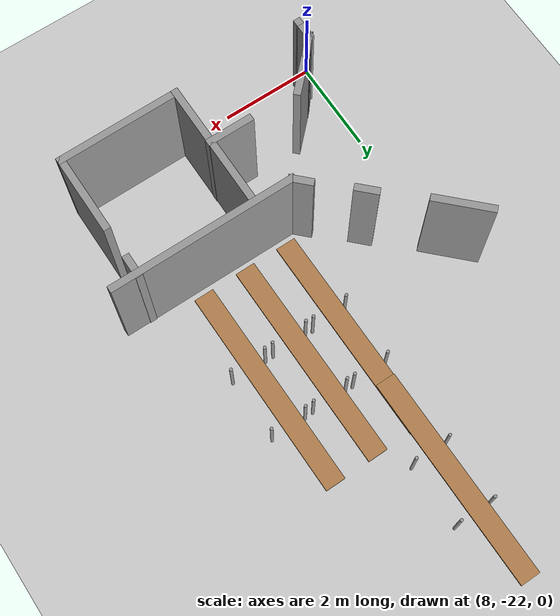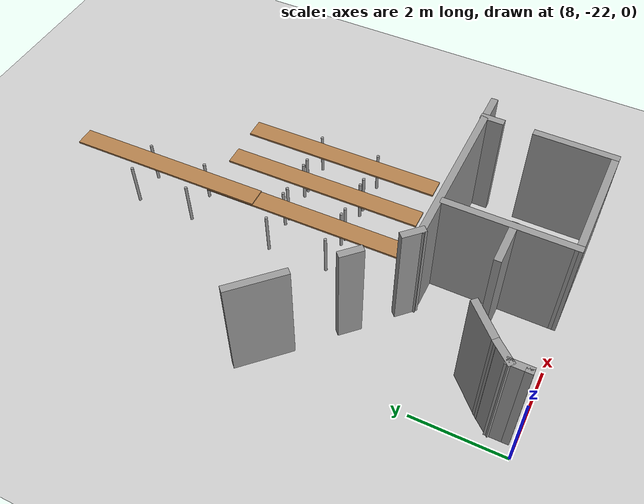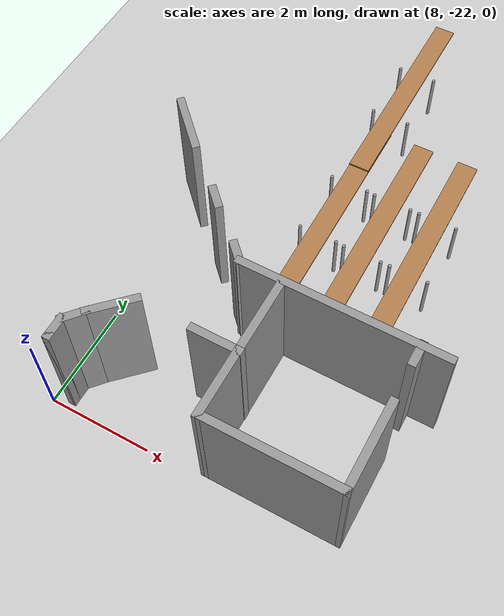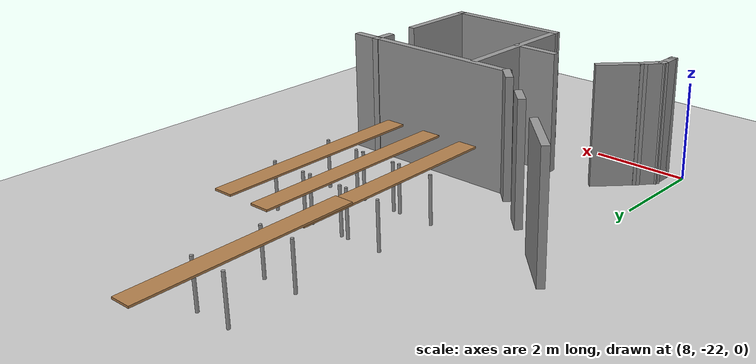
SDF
<sdf version="1.6">
 <world name="default">
  <model name="ground_plane">
   <static>1</static>
   <link name="link">
    <collision name="collision">
     <geometry><plane><normal>0 0 1</normal><size>100 100</size></plane></geometry>
     <surface><friction><ode><mu>100</mu><mu2>50</mu2></ode></friction></surface>
    </collision>
    <visual name="visual">
     <cast_shadows>0</cast_shadows>
     <geometry><plane><normal>0 0 1</normal><size>100 100</size></plane></geometry>
     <material>
      <script><uri>file://media/materials/scripts/gazebo.material</uri><name>Gazebo/Grey</name></script>
     </material>
    </visual>
   </link>
  </model>
  <model name="Parte_DX_(visione_alta_mappa)_CV1">
   <pose>7.84951 -6.02799 0 0 -0 0</pose>
   <link name="Wall_138">
    <collision name="Wall_138_Collision">
     <geometry><box><size>0.5 0.15 2.5</size></box></geometry>
     <pose>0 0 1.25 0 -0 0</pose>
    </collision>
    <visual name="Wall_138_Visual">
     <pose>0 0 1.25 0 -0 0</pose>
     <geometry><box><size>0.5 0.15 2.5</size></box></geometry>
     <material>
      <script><uri>file://media/materials/scripts/gazebo.material</uri><name>Gazebo/Grey</name></script>
      <ambient>1 1 1 1</ambient>
     </material>
    </visual>
    <pose>5.78705 -13.262 0 0 0 -1.5708</pose>
   </link>
   <link name="Wall_140">
    <collision name="Wall_140_Collision">
     <geometry><box><size>1.75 0.15 2.5</size></box></geometry>
     <pose>0 0 1.25 0 -0 0</pose>
    </collision>
    <visual name="Wall_140_Visual">
     <pose>0 0 1.25 0 -0 0</pose>
     <geometry><box><size>1.75 0.15 2.5</size></box></geometry>
     <material>
      <script><uri>file://media/materials/scripts/gazebo.material</uri><name>Gazebo/Grey</name></script>
      <ambient>1 1 1 1</ambient>
     </material>
    </visual>
    <pose>5.79565 -14.9955 0 0 0 -1.5708</pose>
   </link>
   <link name="Wall_142">
    <collision name="Wall_142_Collision">
     <geometry><box><size>2.75 0.15 2.5</size></box></geometry>
     <pose>0 0 1.25 0 -0 0</pose>
    </collision>
    <visual name="Wall_142_Visual">
     <pose>0 0 1.25 0 -0 0</pose>
     <geometry><box><size>2.75 0.15 2.5</size></box></geometry>
     <material>
      <script><uri>file://media/materials/scripts/gazebo.material</uri><name>Gazebo/Grey</name></script>
      <ambient>1 1 1 1</ambient>
     </material>
    </visual>
    <pose>3.27651 -14.5074 0 0 0 -1.5708</pose>
   </link>
   <link name="Wall_143">
    <collision name="Wall_143_Collision">
     <geometry><box><size>2.66916 0.15 2.5</size></box></geometry>
     <pose>0 0 1.25 0 -0 0</pose>
    </collision>
    <visual name="Wall_143_Visual">
     <pose>0 0 1.25 0 -0 0</pose>
     <geometry><box><size>2.66916 0.15 2.5</size></box></geometry>
     <material>
      <script><uri>file://media/materials/scripts/gazebo.material</uri><name>Gazebo/Grey</name></script>
      <ambient>1 1 1 1</ambient>
     </material>
    </visual>
    <pose>4.53608 -15.8014 0 0 -0 0.004735</pose>
   </link>
   <link name="Wall_145">
    <collision name="Wall_145_Collision">
     <geometry><box><size>1 0.15 2.5</size></box></geometry>
     <pose>0 0 1.25 0 -0 0</pose>
    </collision>
    <visual name="Wall_145_Visual">
     <pose>0 0 1.25 0 -0 0</pose>
     <geometry><box><size>1 0.15 2.5</size></box></geometry>
     <material>
      <script><uri>file://media/materials/scripts/gazebo.material</uri><name>Gazebo/Grey</name></script>
      <ambient>1 1 1 1</ambient>
     </material>
    </visual>
    <pose>2.86011 -14.5744 0 0 -0 3.14159</pose>
   </link>
   <link name="Wall_147">
    <collision name="Wall_147_Collision">
     <geometry><box><size>1 0.15 2.5</size></box></geometry>
     <pose>0 0 1.25 0 -0 0</pose>
    </collision>
    <visual name="Wall_147_Visual">
     <pose>0 0 1.25 0 -0 0</pose>
     <geometry><box><size>1 0.15 2.5</size></box></geometry>
     <material>
      <script><uri>file://media/materials/scripts/gazebo.material</uri><name>Gazebo/Grey</name></script>
      <ambient>1 1 1 1</ambient>
     </material>
    </visual>
    <pose>1.0501 -14.8406 0 0 0 -2.35619</pose>
   </link>
   <link name="Wall_151">
    <collision name="Wall_151_Collision">
     <geometry><box><size>0.15 0.15 2.5</size></box></geometry>
     <pose>0 0 1.25 0 -0 0</pose>
    </collision>
    <visual name="Wall_151_Visual">
     <pose>0 0 1.25 0 -0 0</pose>
     <geometry><box><size>0.15 0.15 2.5</size></box></geometry>
     <material>
      <script><uri>file://media/materials/scripts/gazebo.material</uri><name>Gazebo/Grey</name></script>
      <ambient>1 1 1 1</ambient>
     </material>
    </visual>
    <pose>0.485072 -15.7953 0 0 -0 0</pose>
   </link>
   <link name="Wall_154">
    <collision name="Wall_154_Collision">
     <geometry><box><size>0.5 0.15 2.5</size></box></geometry>
     <pose>0 0 1.25 0 -0 0</pose>
    </collision>
    <visual name="Wall_154_Visual">
     <pose>0 0 1.25 0 -0 0</pose>
     <geometry><box><size>0.5 0.15 2.5</size></box></geometry>
     <material>
      <script><uri>file://media/materials/scripts/gazebo.material</uri><name>Gazebo/Grey</name></script>
      <ambient>1 1 1 1</ambient>
     </material>
    </visual>
    <pose>0.485072 -15.6203 0 0 -0 1.5708</pose>
   </link>
   <link name="Wall_155">
    <collision name="Wall_155_Collision">
     <geometry><box><size>0.553138 0.15 2.5</size></box></geometry>
     <pose>0 0 1.25 0 -0 0</pose>
    </collision>
    <visual name="Wall_155_Visual">
     <pose>0 0 1.25 0 -0 0</pose>
     <geometry><box><size>0.553138 0.15 2.5</size></box></geometry>
     <material>
      <script><uri>file://media/materials/scripts/gazebo.material</uri><name>Gazebo/Grey</name></script>
      <ambient>1 1 1 1</ambient>
     </material>
    </visual>
    <pose>0.617326 -15.2932 0 0 -0 0.85512</pose>
   </link>
   <link name="Wall_196">
    <collision name="Wall_196_Collision">
     <geometry><box><size>1.25 0.15 2.5</size></box></geometry>
     <pose>0 0 1.25 0 -0 0</pose>
    </collision>
    <visual name="Wall_196_Visual">
     <pose>0 0 1.25 0 -0 0</pose>
     <geometry><box><size>1.25 0.15 2.5</size></box></geometry>
     <material>
      <script><uri>file://media/materials/scripts/gazebo.material</uri><name>Gazebo/Grey</name></script>
      <ambient>1 1 1 1</ambient>
     </material>
    </visual>
    <pose>0.112061 -10.9318 0 0 0 -0.785398</pose>
   </link>
   <link name="Wall_198">
    <collision name="Wall_198_Collision">
     <geometry><box><size>0.5 0.15 2.5</size></box></geometry>
     <pose>0 0 1.25 0 -0 0</pose>
    </collision>
    <visual name="Wall_198_Visual">
     <pose>0 0 1.25 0 -0 0</pose>
     <geometry><box><size>0.5 0.15 2.5</size></box></geometry>
     <material>
      <script><uri>file://media/materials/scripts/gazebo.material</uri><name>Gazebo/Grey</name></script>
      <ambient>1 1 1 1</ambient>
     </material>
    </visual>
    <pose>1.42128 -12.1501 0 0 0 -0.785398</pose>
   </link>
   <link name="Wall_71">
    <collision name="Wall_71_Collision">
     <geometry><box><size>4 0.15 2.5</size></box></geometry>
     <pose>0 0 1.25 0 -0 0</pose>
    </collision>
    <visual name="Wall_71_Visual">
     <pose>0 0 1.25 0 -0 0</pose>
     <geometry><box><size>4 0.15 2.5</size></box></geometry>
     <material>
      <script><uri>file://media/materials/scripts/gazebo.material</uri><name>Gazebo/Grey</name></script>
      <ambient>1 1 1 1</ambient>
     </material>
    </visual>
    <pose>4.37477 -13.1006 0 0 -0 0</pose>
   </link>
   <link name="Wall_75">
    <collision name="Wall_75_Collision">
     <geometry><box><size>0.5 0.15 2.5</size></box></geometry>
     <pose>0 0 1.25 0 -0 0</pose>
    </collision>
    <visual name="Wall_75_Visual">
     <pose>0 0 1.25 0 -0 0</pose>
     <geometry><box><size>0.5 0.15 2.5</size></box></geometry>
     <material>
      <script><uri>file://media/materials/scripts/gazebo.material</uri><name>Gazebo/Grey</name></script>
      <ambient>1 1 1 1</ambient>
     </material>
    </visual>
    <pose>2.32603 -12.9769 0 0 -0 2.35619</pose>
   </link>
   <static>1</static>
  </model>
  <model name="tablesclass_clone_29">
   <link name="link">
    <inertial>
     <inertia><ixx>0</ixx><ixy>0</ixy><ixz>0</ixz><iyy>0</iyy><iyz>0</iyz><izz>0</izz></inertia>
     <mass>1.73923</mass>
    </inertial>
    <visual name="front_right_leg">
     <pose>0.68 -0.38 0.5 0 -0 0</pose>
     <geometry><cylinder><radius>0.0324505</radius><length>1</length></cylinder></geometry>
     <material>
      <script><uri>file://media/materials/scripts/gazebo.material</uri><name>Gazebo/Grey</name></script>
      <ambient>0.3 0.3 0.3 1</ambient>
      <diffuse>0.7 0.7 0.7 1</diffuse>
      <specular>0.01 0.01 0.01 1</specular>
      <emissive>0 0 0 1</emissive>
     </material>
    </visual>
    <visual name="back_left_leg">
     <pose>-0.68 0.38 0.5 0 -0 0</pose>
     <geometry><cylinder><radius>0.0324505</radius><length>1</length></cylinder></geometry>
     <material>
      <script><uri>file://media/materials/scripts/gazebo.material</uri><name>Gazebo/Grey</name></script>
      <ambient>0.3 0.3 0.3 1</ambient>
      <diffuse>0.7 0.7 0.7 1</diffuse>
      <specular>0.01 0.01 0.01 1</specular>
      <emissive>0 0 0 1</emissive>
     </material>
    </visual>
    <visual name="front_left_leg">
     <pose>0.68 0.38 0.5 0 -0 0</pose>
     <geometry><cylinder><radius>0.0324505</radius><length>1</length></cylinder></geometry>
     <material>
      <script><uri>file://media/materials/scripts/gazebo.material</uri><name>Gazebo/Grey</name></script>
      <ambient>0.3 0.3 0.3 1</ambient>
      <diffuse>0.7 0.7 0.7 1</diffuse>
      <specular>0.01 0.01 0.01 1</specular>
      <emissive>0 0 0 1</emissive>
     </material>
    </visual>
    <visual name="visual1">
     <pose>0 0 1 0 -0 0</pose>
     <geometry><box><size>4.38513 0.412326 0.04</size></box></geometry>
     <material>
      <script><uri>file://media/materials/scripts/gazebo.material</uri><name>Gazebo/Wood</name></script>
      <ambient>1 1 1 1</ambient>
      <diffuse>1 1 1 1</diffuse>
      <specular>0.2 0.2 0.2 1</specular>
      <emissive>0 0 0 1</emissive>
     </material>
    </visual>
    <visual name="back_right_leg">
     <pose>-0.68 -0.38 0.5 0 -0 0</pose>
     <geometry><cylinder><radius>0.0324505</radius><length>1</length></cylinder></geometry>
     <material>
      <script><uri>file://media/materials/scripts/gazebo.material</uri><name>Gazebo/Grey</name></script>
      <ambient>0.3 0.3 0.3 1</ambient>
      <diffuse>0.7 0.7 0.7 1</diffuse>
      <specular>0.01 0.01 0.01 1</specular>
      <emissive>0 0 0 1</emissive>
     </material>
    </visual>
    <collision name="front_left_leg">
     <pose>0.68 0.38 0.5 0 -0 0</pose>
     <geometry><cylinder><radius>0.03245</radius><length>1</length></cylinder></geometry>
     <surface>
      <friction>
       <ode><mu>1</mu><mu2>1</mu2><fdir1>0 0 0</fdir1><slip1>0</slip1><slip2>0</slip2></ode>
       <torsional>
        <coefficient>1</coefficient>
        <patch_radius>0</patch_radius>
        <surface_radius>0</surface_radius>
        <use_patch_radius>1</use_patch_radius>
        <ode><slip>0</slip></ode>
       </torsional>
      </friction>
      <bounce><restitution_coefficient>0</restitution_coefficient><threshold>1e+06</threshold></bounce>
      <contact>
       <collide_without_contact>0</collide_without_contact>
       <collide_without_contact_bitmask>1</collide_without_contact_bitmask>
       <collide_bitmask>1</collide_bitmask>
       <ode>
        <soft_cfm>0</soft_cfm>
        <soft_erp>0.2</soft_erp>
        <kp>1e+13</kp>
        <kd>1</kd>
        <max_vel>0.01</max_vel>
        <min_depth>0</min_depth>
       </ode>
       <bullet>
        <split_impulse>1</split_impulse>
        <split_impulse_penetration_threshold>-0.01</split_impulse_penetration_threshold>
        <soft_cfm>0</soft_cfm>
        <soft_erp>0.2</soft_erp>
        <kp>1e+13</kp>
        <kd>1</kd>
       </bullet>
      </contact>
     </surface>
    </collision>
    <collision name="front_right_leg">
     <pose>0.68 -0.38 0.5 0 -0 0</pose>
     <geometry><cylinder><radius>0.03245</radius><length>1</length></cylinder></geometry>
     <surface>
      <friction>
       <ode><mu>1</mu><mu2>1</mu2><fdir1>0 0 0</fdir1><slip1>0</slip1><slip2>0</slip2></ode>
       <torsional>
        <coefficient>1</coefficient>
        <patch_radius>0</patch_radius>
        <surface_radius>0</surface_radius>
        <use_patch_radius>1</use_patch_radius>
        <ode><slip>0</slip></ode>
       </torsional>
      </friction>
      <bounce><restitution_coefficient>0</restitution_coefficient><threshold>1e+06</threshold></bounce>
      <contact>
       <collide_without_contact>0</collide_without_contact>
       <collide_without_contact_bitmask>1</collide_without_contact_bitmask>
       <collide_bitmask>1</collide_bitmask>
       <ode>
        <soft_cfm>0</soft_cfm>
        <soft_erp>0.2</soft_erp>
        <kp>1e+13</kp>
        <kd>1</kd>
        <max_vel>0.01</max_vel>
        <min_depth>0</min_depth>
       </ode>
       <bullet>
        <split_impulse>1</split_impulse>
        <split_impulse_penetration_threshold>-0.01</split_impulse_penetration_threshold>
        <soft_cfm>0</soft_cfm>
        <soft_erp>0.2</soft_erp>
        <kp>1e+13</kp>
        <kd>1</kd>
       </bullet>
      </contact>
     </surface>
    </collision>
    <collision name="back_left_leg">
     <pose>-0.68 0.38 0.5 0 -0 0</pose>
     <geometry><cylinder><radius>0.03245</radius><length>1</length></cylinder></geometry>
     <surface>
      <friction>
       <ode><mu>1</mu><mu2>1</mu2><fdir1>0 0 0</fdir1><slip1>0</slip1><slip2>0</slip2></ode>
       <torsional>
        <coefficient>1</coefficient>
        <patch_radius>0</patch_radius>
        <surface_radius>0</surface_radius>
        <use_patch_radius>1</use_patch_radius>
        <ode><slip>0</slip></ode>
       </torsional>
      </friction>
      <bounce><restitution_coefficient>0</restitution_coefficient><threshold>1e+06</threshold></bounce>
      <contact>
       <collide_without_contact>0</collide_without_contact>
       <collide_without_contact_bitmask>1</collide_without_contact_bitmask>
       <collide_bitmask>1</collide_bitmask>
       <ode>
        <soft_cfm>0</soft_cfm>
        <soft_erp>0.2</soft_erp>
        <kp>1e+13</kp>
        <kd>1</kd>
        <max_vel>0.01</max_vel>
        <min_depth>0</min_depth>
       </ode>
       <bullet>
        <split_impulse>1</split_impulse>
        <split_impulse_penetration_threshold>-0.01</split_impulse_penetration_threshold>
        <soft_cfm>0</soft_cfm>
        <soft_erp>0.2</soft_erp>
        <kp>1e+13</kp>
        <kd>1</kd>
       </bullet>
      </contact>
     </surface>
    </collision>
    <collision name="back_right_leg">
     <pose>-0.68 -0.38 0.5 0 -0 0</pose>
     <geometry><cylinder><radius>0.03245</radius><length>1</length></cylinder></geometry>
     <surface>
      <friction>
       <ode><mu>1</mu><mu2>1</mu2><fdir1>0 0 0</fdir1><slip1>0</slip1><slip2>0</slip2></ode>
       <torsional>
        <coefficient>1</coefficient>
        <patch_radius>0</patch_radius>
        <surface_radius>0</surface_radius>
        <use_patch_radius>1</use_patch_radius>
        <ode><slip>0</slip></ode>
       </torsional>
      </friction>
      <bounce><restitution_coefficient>0</restitution_coefficient><threshold>1e+06</threshold></bounce>
      <contact>
       <collide_without_contact>0</collide_without_contact>
       <collide_without_contact_bitmask>1</collide_without_contact_bitmask>
       <collide_bitmask>1</collide_bitmask>
       <ode>
        <soft_cfm>0</soft_cfm>
        <soft_erp>0.2</soft_erp>
        <kp>1e+13</kp>
        <kd>1</kd>
        <max_vel>0.01</max_vel>
        <min_depth>0</min_depth>
       </ode>
       <bullet>
        <split_impulse>1</split_impulse>
        <split_impulse_penetration_threshold>-0.01</split_impulse_penetration_threshold>
        <soft_cfm>0</soft_cfm>
        <soft_erp>0.2</soft_erp>
        <kp>1e+13</kp>
        <kd>1</kd>
       </bullet>
      </contact>
     </surface>
    </collision>
    <collision name="surface">
     <pose>0 0 1 0 -0 0</pose>
     <geometry><box><size>4.69836 0.412326 0.03</size></box></geometry>
     <surface>
      <friction>
       <ode><mu>0.6</mu><mu2>0.6</mu2><fdir1>0 0 0</fdir1><slip1>0</slip1><slip2>0</slip2></ode>
       <torsional>
        <coefficient>1</coefficient>
        <patch_radius>0</patch_radius>
        <surface_radius>0</surface_radius>
        <use_patch_radius>1</use_patch_radius>
        <ode><slip>0</slip></ode>
       </torsional>
      </friction>
      <bounce><restitution_coefficient>0</restitution_coefficient><threshold>1e+06</threshold></bounce>
      <contact>
       <collide_without_contact>0</collide_without_contact>
       <collide_without_contact_bitmask>1</collide_without_contact_bitmask>
       <collide_bitmask>1</collide_bitmask>
       <ode>
        <soft_cfm>0</soft_cfm>
        <soft_erp>0.2</soft_erp>
        <kp>1e+13</kp>
        <kd>1</kd>
        <max_vel>0.01</max_vel>
        <min_depth>0</min_depth>
       </ode>
       <bullet>
        <split_impulse>1</split_impulse>
        <split_impulse_penetration_threshold>-0.01</split_impulse_penetration_threshold>
        <soft_cfm>0</soft_cfm>
        <soft_erp>0.2</soft_erp>
        <kp>1e+13</kp>
        <kd>1</kd>
       </bullet>
      </contact>
     </surface>
    </collision>
   </link>
   <static>0</static>
   <pose>10.7869 -16.4221 0.00593 4e-06 -0.008326 -1.56362</pose>
  </model>
  <model name="tablesclass_clone_30">
   <link name="link">
    <inertial>
     <inertia><ixx>0</ixx><ixy>0</ixy><ixz>0</ixz><iyy>0</iyy><iyz>0</iyz><izz>0</izz></inertia>
     <mass>1.73923</mass>
    </inertial>
    <visual name="front_right_leg">
     <pose>0.68 -0.38 0.5 0 -0 0</pose>
     <geometry><cylinder><radius>0.0324505</radius><length>1</length></cylinder></geometry>
     <material>
      <script><uri>file://media/materials/scripts/gazebo.material</uri><name>Gazebo/Grey</name></script>
      <ambient>0.3 0.3 0.3 1</ambient>
      <diffuse>0.7 0.7 0.7 1</diffuse>
      <specular>0.01 0.01 0.01 1</specular>
      <emissive>0 0 0 1</emissive>
     </material>
    </visual>
    <visual name="back_left_leg">
     <pose>-0.68 0.38 0.5 0 -0 0</pose>
     <geometry><cylinder><radius>0.0324505</radius><length>1</length></cylinder></geometry>
     <material>
      <script><uri>file://media/materials/scripts/gazebo.material</uri><name>Gazebo/Grey</name></script>
      <ambient>0.3 0.3 0.3 1</ambient>
      <diffuse>0.7 0.7 0.7 1</diffuse>
      <specular>0.01 0.01 0.01 1</specular>
      <emissive>0 0 0 1</emissive>
     </material>
    </visual>
    <visual name="front_left_leg">
     <pose>0.68 0.38 0.5 0 -0 0</pose>
     <geometry><cylinder><radius>0.0324505</radius><length>1</length></cylinder></geometry>
     <material>
      <script><uri>file://media/materials/scripts/gazebo.material</uri><name>Gazebo/Grey</name></script>
      <ambient>0.3 0.3 0.3 1</ambient>
      <diffuse>0.7 0.7 0.7 1</diffuse>
      <specular>0.01 0.01 0.01 1</specular>
      <emissive>0 0 0 1</emissive>
     </material>
    </visual>
    <visual name="visual1">
     <pose>0 0 1 0 -0 0</pose>
     <geometry><box><size>4.38513 0.412326 0.04</size></box></geometry>
     <material>
      <script><uri>file://media/materials/scripts/gazebo.material</uri><name>Gazebo/Wood</name></script>
      <ambient>1 1 1 1</ambient>
      <diffuse>1 1 1 1</diffuse>
      <specular>0.2 0.2 0.2 1</specular>
      <emissive>0 0 0 1</emissive>
     </material>
    </visual>
    <visual name="back_right_leg">
     <pose>-0.68 -0.38 0.5 0 -0 0</pose>
     <geometry><cylinder><radius>0.0324505</radius><length>1</length></cylinder></geometry>
     <material>
      <script><uri>file://media/materials/scripts/gazebo.material</uri><name>Gazebo/Grey</name></script>
      <ambient>0.3 0.3 0.3 1</ambient>
      <diffuse>0.7 0.7 0.7 1</diffuse>
      <specular>0.01 0.01 0.01 1</specular>
      <emissive>0 0 0 1</emissive>
     </material>
    </visual>
    <collision name="front_left_leg">
     <pose>0.68 0.38 0.5 0 -0 0</pose>
     <geometry><cylinder><radius>0.03245</radius><length>1</length></cylinder></geometry>
     <surface>
      <friction>
       <ode><mu>1</mu><mu2>1</mu2><fdir1>0 0 0</fdir1><slip1>0</slip1><slip2>0</slip2></ode>
       <torsional>
        <coefficient>1</coefficient>
        <patch_radius>0</patch_radius>
        <surface_radius>0</surface_radius>
        <use_patch_radius>1</use_patch_radius>
        <ode><slip>0</slip></ode>
       </torsional>
      </friction>
      <bounce><restitution_coefficient>0</restitution_coefficient><threshold>1e+06</threshold></bounce>
      <contact>
       <collide_without_contact>0</collide_without_contact>
       <collide_without_contact_bitmask>1</collide_without_contact_bitmask>
       <collide_bitmask>1</collide_bitmask>
       <ode>
        <soft_cfm>0</soft_cfm>
        <soft_erp>0.2</soft_erp>
        <kp>1e+13</kp>
        <kd>1</kd>
        <max_vel>0.01</max_vel>
        <min_depth>0</min_depth>
       </ode>
       <bullet>
        <split_impulse>1</split_impulse>
        <split_impulse_penetration_threshold>-0.01</split_impulse_penetration_threshold>
        <soft_cfm>0</soft_cfm>
        <soft_erp>0.2</soft_erp>
        <kp>1e+13</kp>
        <kd>1</kd>
       </bullet>
      </contact>
     </surface>
    </collision>
    <collision name="front_right_leg">
     <pose>0.68 -0.38 0.5 0 -0 0</pose>
     <geometry><cylinder><radius>0.03245</radius><length>1</length></cylinder></geometry>
     <surface>
      <friction>
       <ode><mu>1</mu><mu2>1</mu2><fdir1>0 0 0</fdir1><slip1>0</slip1><slip2>0</slip2></ode>
       <torsional>
        <coefficient>1</coefficient>
        <patch_radius>0</patch_radius>
        <surface_radius>0</surface_radius>
        <use_patch_radius>1</use_patch_radius>
        <ode><slip>0</slip></ode>
       </torsional>
      </friction>
      <bounce><restitution_coefficient>0</restitution_coefficient><threshold>1e+06</threshold></bounce>
      <contact>
       <collide_without_contact>0</collide_without_contact>
       <collide_without_contact_bitmask>1</collide_without_contact_bitmask>
       <collide_bitmask>1</collide_bitmask>
       <ode>
        <soft_cfm>0</soft_cfm>
        <soft_erp>0.2</soft_erp>
        <kp>1e+13</kp>
        <kd>1</kd>
        <max_vel>0.01</max_vel>
        <min_depth>0</min_depth>
       </ode>
       <bullet>
        <split_impulse>1</split_impulse>
        <split_impulse_penetration_threshold>-0.01</split_impulse_penetration_threshold>
        <soft_cfm>0</soft_cfm>
        <soft_erp>0.2</soft_erp>
        <kp>1e+13</kp>
        <kd>1</kd>
       </bullet>
      </contact>
     </surface>
    </collision>
    <collision name="back_left_leg">
     <pose>-0.68 0.38 0.5 0 -0 0</pose>
     <geometry><cylinder><radius>0.03245</radius><length>1</length></cylinder></geometry>
     <surface>
      <friction>
       <ode><mu>1</mu><mu2>1</mu2><fdir1>0 0 0</fdir1><slip1>0</slip1><slip2>0</slip2></ode>
       <torsional>
        <coefficient>1</coefficient>
        <patch_radius>0</patch_radius>
        <surface_radius>0</surface_radius>
        <use_patch_radius>1</use_patch_radius>
        <ode><slip>0</slip></ode>
       </torsional>
      </friction>
      <bounce><restitution_coefficient>0</restitution_coefficient><threshold>1e+06</threshold></bounce>
      <contact>
       <collide_without_contact>0</collide_without_contact>
       <collide_without_contact_bitmask>1</collide_without_contact_bitmask>
       <collide_bitmask>1</collide_bitmask>
       <ode>
        <soft_cfm>0</soft_cfm>
        <soft_erp>0.2</soft_erp>
        <kp>1e+13</kp>
        <kd>1</kd>
        <max_vel>0.01</max_vel>
        <min_depth>0</min_depth>
       </ode>
       <bullet>
        <split_impulse>1</split_impulse>
        <split_impulse_penetration_threshold>-0.01</split_impulse_penetration_threshold>
        <soft_cfm>0</soft_cfm>
        <soft_erp>0.2</soft_erp>
        <kp>1e+13</kp>
        <kd>1</kd>
       </bullet>
      </contact>
     </surface>
    </collision>
    <collision name="back_right_leg">
     <pose>-0.68 -0.38 0.5 0 -0 0</pose>
     <geometry><cylinder><radius>0.03245</radius><length>1</length></cylinder></geometry>
     <surface>
      <friction>
       <ode><mu>1</mu><mu2>1</mu2><fdir1>0 0 0</fdir1><slip1>0</slip1><slip2>0</slip2></ode>
       <torsional>
        <coefficient>1</coefficient>
        <patch_radius>0</patch_radius>
        <surface_radius>0</surface_radius>
        <use_patch_radius>1</use_patch_radius>
        <ode><slip>0</slip></ode>
       </torsional>
      </friction>
      <bounce><restitution_coefficient>0</restitution_coefficient><threshold>1e+06</threshold></bounce>
      <contact>
       <collide_without_contact>0</collide_without_contact>
       <collide_without_contact_bitmask>1</collide_without_contact_bitmask>
       <collide_bitmask>1</collide_bitmask>
       <ode>
        <soft_cfm>0</soft_cfm>
        <soft_erp>0.2</soft_erp>
        <kp>1e+13</kp>
        <kd>1</kd>
        <max_vel>0.01</max_vel>
        <min_depth>0</min_depth>
       </ode>
       <bullet>
        <split_impulse>1</split_impulse>
        <split_impulse_penetration_threshold>-0.01</split_impulse_penetration_threshold>
        <soft_cfm>0</soft_cfm>
        <soft_erp>0.2</soft_erp>
        <kp>1e+13</kp>
        <kd>1</kd>
       </bullet>
      </contact>
     </surface>
    </collision>
    <collision name="surface">
     <pose>0 0 1 0 -0 0</pose>
     <geometry><box><size>4.69836 0.412326 0.03</size></box></geometry>
     <surface>
      <friction>
       <ode><mu>0.6</mu><mu2>0.6</mu2><fdir1>0 0 0</fdir1><slip1>0</slip1><slip2>0</slip2></ode>
       <torsional>
        <coefficient>1</coefficient>
        <patch_radius>0</patch_radius>
        <surface_radius>0</surface_radius>
        <use_patch_radius>1</use_patch_radius>
        <ode><slip>0</slip></ode>
       </torsional>
      </friction>
      <bounce><restitution_coefficient>0</restitution_coefficient><threshold>1e+06</threshold></bounce>
      <contact>
       <collide_without_contact>0</collide_without_contact>
       <collide_without_contact_bitmask>1</collide_without_contact_bitmask>
       <collide_bitmask>1</collide_bitmask>
       <ode>
        <soft_cfm>0</soft_cfm>
        <soft_erp>0.2</soft_erp>
        <kp>1e+13</kp>
        <kd>1</kd>
        <max_vel>0.01</max_vel>
        <min_depth>0</min_depth>
       </ode>
       <bullet>
        <split_impulse>1</split_impulse>
        <split_impulse_penetration_threshold>-0.01</split_impulse_penetration_threshold>
        <soft_cfm>0</soft_cfm>
        <soft_erp>0.2</soft_erp>
        <kp>1e+13</kp>
        <kd>1</kd>
       </bullet>
      </contact>
     </surface>
    </collision>
   </link>
   <static>0</static>
   <pose>10.7582 -13.1317 0.007052 3e-06 -0.0099 -1.56358</pose>
  </model>
  <model name="tablesclass_clone_31">
   <link name="link">
    <inertial>
     <inertia><ixx>0</ixx><ixy>0</ixy><ixz>0</ixz><iyy>0</iyy><iyz>0</iyz><izz>0</izz></inertia>
     <mass>1.73923</mass>
    </inertial>
    <visual name="front_right_leg">
     <pose>0.68 -0.38 0.5 0 -0 0</pose>
     <geometry><cylinder><radius>0.0324505</radius><length>1</length></cylinder></geometry>
     <material>
      <script><uri>file://media/materials/scripts/gazebo.material</uri><name>Gazebo/Grey</name></script>
      <ambient>0.3 0.3 0.3 1</ambient>
      <diffuse>0.7 0.7 0.7 1</diffuse>
      <specular>0.01 0.01 0.01 1</specular>
      <emissive>0 0 0 1</emissive>
     </material>
    </visual>
    <visual name="back_left_leg">
     <pose>-0.68 0.38 0.5 0 -0 0</pose>
     <geometry><cylinder><radius>0.0324505</radius><length>1</length></cylinder></geometry>
     <material>
      <script><uri>file://media/materials/scripts/gazebo.material</uri><name>Gazebo/Grey</name></script>
      <ambient>0.3 0.3 0.3 1</ambient>
      <diffuse>0.7 0.7 0.7 1</diffuse>
      <specular>0.01 0.01 0.01 1</specular>
      <emissive>0 0 0 1</emissive>
     </material>
    </visual>
    <visual name="front_left_leg">
     <pose>0.68 0.38 0.5 0 -0 0</pose>
     <geometry><cylinder><radius>0.0324505</radius><length>1</length></cylinder></geometry>
     <material>
      <script><uri>file://media/materials/scripts/gazebo.material</uri><name>Gazebo/Grey</name></script>
      <ambient>0.3 0.3 0.3 1</ambient>
      <diffuse>0.7 0.7 0.7 1</diffuse>
      <specular>0.01 0.01 0.01 1</specular>
      <emissive>0 0 0 1</emissive>
     </material>
    </visual>
    <visual name="visual1">
     <pose>0 0 1 0 -0 0</pose>
     <geometry><box><size>4.38513 0.412326 0.04</size></box></geometry>
     <material>
      <script><uri>file://media/materials/scripts/gazebo.material</uri><name>Gazebo/Wood</name></script>
      <ambient>1 1 1 1</ambient>
      <diffuse>1 1 1 1</diffuse>
      <specular>0.2 0.2 0.2 1</specular>
      <emissive>0 0 0 1</emissive>
     </material>
    </visual>
    <visual name="back_right_leg">
     <pose>-0.68 -0.38 0.5 0 -0 0</pose>
     <geometry><cylinder><radius>0.0324505</radius><length>1</length></cylinder></geometry>
     <material>
      <script><uri>file://media/materials/scripts/gazebo.material</uri><name>Gazebo/Grey</name></script>
      <ambient>0.3 0.3 0.3 1</ambient>
      <diffuse>0.7 0.7 0.7 1</diffuse>
      <specular>0.01 0.01 0.01 1</specular>
      <emissive>0 0 0 1</emissive>
     </material>
    </visual>
    <collision name="front_left_leg">
     <pose>0.68 0.38 0.5 0 -0 0</pose>
     <geometry><cylinder><radius>0.03245</radius><length>1</length></cylinder></geometry>
     <surface>
      <friction>
       <ode><mu>1</mu><mu2>1</mu2><fdir1>0 0 0</fdir1><slip1>0</slip1><slip2>0</slip2></ode>
       <torsional>
        <coefficient>1</coefficient>
        <patch_radius>0</patch_radius>
        <surface_radius>0</surface_radius>
        <use_patch_radius>1</use_patch_radius>
        <ode><slip>0</slip></ode>
       </torsional>
      </friction>
      <bounce><restitution_coefficient>0</restitution_coefficient><threshold>1e+06</threshold></bounce>
      <contact>
       <collide_without_contact>0</collide_without_contact>
       <collide_without_contact_bitmask>1</collide_without_contact_bitmask>
       <collide_bitmask>1</collide_bitmask>
       <ode>
        <soft_cfm>0</soft_cfm>
        <soft_erp>0.2</soft_erp>
        <kp>1e+13</kp>
        <kd>1</kd>
        <max_vel>0.01</max_vel>
        <min_depth>0</min_depth>
       </ode>
       <bullet>
        <split_impulse>1</split_impulse>
        <split_impulse_penetration_threshold>-0.01</split_impulse_penetration_threshold>
        <soft_cfm>0</soft_cfm>
        <soft_erp>0.2</soft_erp>
        <kp>1e+13</kp>
        <kd>1</kd>
       </bullet>
      </contact>
     </surface>
    </collision>
    <collision name="front_right_leg">
     <pose>0.68 -0.38 0.5 0 -0 0</pose>
     <geometry><cylinder><radius>0.03245</radius><length>1</length></cylinder></geometry>
     <surface>
      <friction>
       <ode><mu>1</mu><mu2>1</mu2><fdir1>0 0 0</fdir1><slip1>0</slip1><slip2>0</slip2></ode>
       <torsional>
        <coefficient>1</coefficient>
        <patch_radius>0</patch_radius>
        <surface_radius>0</surface_radius>
        <use_patch_radius>1</use_patch_radius>
        <ode><slip>0</slip></ode>
       </torsional>
      </friction>
      <bounce><restitution_coefficient>0</restitution_coefficient><threshold>1e+06</threshold></bounce>
      <contact>
       <collide_without_contact>0</collide_without_contact>
       <collide_without_contact_bitmask>1</collide_without_contact_bitmask>
       <collide_bitmask>1</collide_bitmask>
       <ode>
        <soft_cfm>0</soft_cfm>
        <soft_erp>0.2</soft_erp>
        <kp>1e+13</kp>
        <kd>1</kd>
        <max_vel>0.01</max_vel>
        <min_depth>0</min_depth>
       </ode>
       <bullet>
        <split_impulse>1</split_impulse>
        <split_impulse_penetration_threshold>-0.01</split_impulse_penetration_threshold>
        <soft_cfm>0</soft_cfm>
        <soft_erp>0.2</soft_erp>
        <kp>1e+13</kp>
        <kd>1</kd>
       </bullet>
      </contact>
     </surface>
    </collision>
    <collision name="back_left_leg">
     <pose>-0.68 0.38 0.5 0 -0 0</pose>
     <geometry><cylinder><radius>0.03245</radius><length>1</length></cylinder></geometry>
     <surface>
      <friction>
       <ode><mu>1</mu><mu2>1</mu2><fdir1>0 0 0</fdir1><slip1>0</slip1><slip2>0</slip2></ode>
       <torsional>
        <coefficient>1</coefficient>
        <patch_radius>0</patch_radius>
        <surface_radius>0</surface_radius>
        <use_patch_radius>1</use_patch_radius>
        <ode><slip>0</slip></ode>
       </torsional>
      </friction>
      <bounce><restitution_coefficient>0</restitution_coefficient><threshold>1e+06</threshold></bounce>
      <contact>
       <collide_without_contact>0</collide_without_contact>
       <collide_without_contact_bitmask>1</collide_without_contact_bitmask>
       <collide_bitmask>1</collide_bitmask>
       <ode>
        <soft_cfm>0</soft_cfm>
        <soft_erp>0.2</soft_erp>
        <kp>1e+13</kp>
        <kd>1</kd>
        <max_vel>0.01</max_vel>
        <min_depth>0</min_depth>
       </ode>
       <bullet>
        <split_impulse>1</split_impulse>
        <split_impulse_penetration_threshold>-0.01</split_impulse_penetration_threshold>
        <soft_cfm>0</soft_cfm>
        <soft_erp>0.2</soft_erp>
        <kp>1e+13</kp>
        <kd>1</kd>
       </bullet>
      </contact>
     </surface>
    </collision>
    <collision name="back_right_leg">
     <pose>-0.68 -0.38 0.5 0 -0 0</pose>
     <geometry><cylinder><radius>0.03245</radius><length>1</length></cylinder></geometry>
     <surface>
      <friction>
       <ode><mu>1</mu><mu2>1</mu2><fdir1>0 0 0</fdir1><slip1>0</slip1><slip2>0</slip2></ode>
       <torsional>
        <coefficient>1</coefficient>
        <patch_radius>0</patch_radius>
        <surface_radius>0</surface_radius>
        <use_patch_radius>1</use_patch_radius>
        <ode><slip>0</slip></ode>
       </torsional>
      </friction>
      <bounce><restitution_coefficient>0</restitution_coefficient><threshold>1e+06</threshold></bounce>
      <contact>
       <collide_without_contact>0</collide_without_contact>
       <collide_without_contact_bitmask>1</collide_without_contact_bitmask>
       <collide_bitmask>1</collide_bitmask>
       <ode>
        <soft_cfm>0</soft_cfm>
        <soft_erp>0.2</soft_erp>
        <kp>1e+13</kp>
        <kd>1</kd>
        <max_vel>0.01</max_vel>
        <min_depth>0</min_depth>
       </ode>
       <bullet>
        <split_impulse>1</split_impulse>
        <split_impulse_penetration_threshold>-0.01</split_impulse_penetration_threshold>
        <soft_cfm>0</soft_cfm>
        <soft_erp>0.2</soft_erp>
        <kp>1e+13</kp>
        <kd>1</kd>
       </bullet>
      </contact>
     </surface>
    </collision>
    <collision name="surface">
     <pose>0 0 1 0 -0 0</pose>
     <geometry><box><size>4.69836 0.412326 0.03</size></box></geometry>
     <surface>
      <friction>
       <ode><mu>0.6</mu><mu2>0.6</mu2><fdir1>0 0 0</fdir1><slip1>0</slip1><slip2>0</slip2></ode>
       <torsional>
        <coefficient>1</coefficient>
        <patch_radius>0</patch_radius>
        <surface_radius>0</surface_radius>
        <use_patch_radius>1</use_patch_radius>
        <ode><slip>0</slip></ode>
       </torsional>
      </friction>
      <bounce><restitution_coefficient>0</restitution_coefficient><threshold>1e+06</threshold></bounce>
      <contact>
       <collide_without_contact>0</collide_without_contact>
       <collide_without_contact_bitmask>1</collide_without_contact_bitmask>
       <collide_bitmask>1</collide_bitmask>
       <ode>
        <soft_cfm>0</soft_cfm>
        <soft_erp>0.2</soft_erp>
        <kp>1e+13</kp>
        <kd>1</kd>
        <max_vel>0.01</max_vel>
        <min_depth>0</min_depth>
       </ode>
       <bullet>
        <split_impulse>1</split_impulse>
        <split_impulse_penetration_threshold>-0.01</split_impulse_penetration_threshold>
        <soft_cfm>0</soft_cfm>
        <soft_erp>0.2</soft_erp>
        <kp>1e+13</kp>
        <kd>1</kd>
       </bullet>
      </contact>
     </surface>
    </collision>
   </link>
   <static>0</static>
   <pose>11.714 -16.4248 0.002508 -4e-06 -0.006544 -1.56327</pose>
  </model>
  <model name="tablesclass_clone_33">
   <link name="link">
    <inertial>
     <inertia><ixx>0</ixx><ixy>0</ixy><ixz>0</ixz><iyy>0</iyy><iyz>0</iyz><izz>0</izz></inertia>
     <mass>1.73923</mass>
    </inertial>
    <visual name="front_right_leg">
     <pose>0.68 -0.38 0.5 0 -0 0</pose>
     <geometry><cylinder><radius>0.0324505</radius><length>1</length></cylinder></geometry>
     <material>
      <script><uri>file://media/materials/scripts/gazebo.material</uri><name>Gazebo/Grey</name></script>
      <ambient>0.3 0.3 0.3 1</ambient>
      <diffuse>0.7 0.7 0.7 1</diffuse>
      <specular>0.01 0.01 0.01 1</specular>
      <emissive>0 0 0 1</emissive>
     </material>
    </visual>
    <visual name="back_left_leg">
     <pose>-0.68 0.38 0.5 0 -0 0</pose>
     <geometry><cylinder><radius>0.0324505</radius><length>1</length></cylinder></geometry>
     <material>
      <script><uri>file://media/materials/scripts/gazebo.material</uri><name>Gazebo/Grey</name></script>
      <ambient>0.3 0.3 0.3 1</ambient>
      <diffuse>0.7 0.7 0.7 1</diffuse>
      <specular>0.01 0.01 0.01 1</specular>
      <emissive>0 0 0 1</emissive>
     </material>
    </visual>
    <visual name="front_left_leg">
     <pose>0.68 0.38 0.5 0 -0 0</pose>
     <geometry><cylinder><radius>0.0324505</radius><length>1</length></cylinder></geometry>
     <material>
      <script><uri>file://media/materials/scripts/gazebo.material</uri><name>Gazebo/Grey</name></script>
      <ambient>0.3 0.3 0.3 1</ambient>
      <diffuse>0.7 0.7 0.7 1</diffuse>
      <specular>0.01 0.01 0.01 1</specular>
      <emissive>0 0 0 1</emissive>
     </material>
    </visual>
    <visual name="visual1">
     <pose>0 0 1 0 -0 0</pose>
     <geometry><box><size>4.38513 0.412326 0.04</size></box></geometry>
     <material>
      <script><uri>file://media/materials/scripts/gazebo.material</uri><name>Gazebo/Wood</name></script>
      <ambient>1 1 1 1</ambient>
      <diffuse>1 1 1 1</diffuse>
      <specular>0.2 0.2 0.2 1</specular>
      <emissive>0 0 0 1</emissive>
     </material>
    </visual>
    <visual name="back_right_leg">
     <pose>-0.68 -0.38 0.5 0 -0 0</pose>
     <geometry><cylinder><radius>0.0324505</radius><length>1</length></cylinder></geometry>
     <material>
      <script><uri>file://media/materials/scripts/gazebo.material</uri><name>Gazebo/Grey</name></script>
      <ambient>0.3 0.3 0.3 1</ambient>
      <diffuse>0.7 0.7 0.7 1</diffuse>
      <specular>0.01 0.01 0.01 1</specular>
      <emissive>0 0 0 1</emissive>
     </material>
    </visual>
    <collision name="front_left_leg">
     <pose>0.68 0.38 0.5 0 -0 0</pose>
     <geometry><cylinder><radius>0.03245</radius><length>1</length></cylinder></geometry>
     <surface>
      <friction>
       <ode><mu>1</mu><mu2>1</mu2><fdir1>0 0 0</fdir1><slip1>0</slip1><slip2>0</slip2></ode>
       <torsional>
        <coefficient>1</coefficient>
        <patch_radius>0</patch_radius>
        <surface_radius>0</surface_radius>
        <use_patch_radius>1</use_patch_radius>
        <ode><slip>0</slip></ode>
       </torsional>
      </friction>
      <bounce><restitution_coefficient>0</restitution_coefficient><threshold>1e+06</threshold></bounce>
      <contact>
       <collide_without_contact>0</collide_without_contact>
       <collide_without_contact_bitmask>1</collide_without_contact_bitmask>
       <collide_bitmask>1</collide_bitmask>
       <ode>
        <soft_cfm>0</soft_cfm>
        <soft_erp>0.2</soft_erp>
        <kp>1e+13</kp>
        <kd>1</kd>
        <max_vel>0.01</max_vel>
        <min_depth>0</min_depth>
       </ode>
       <bullet>
        <split_impulse>1</split_impulse>
        <split_impulse_penetration_threshold>-0.01</split_impulse_penetration_threshold>
        <soft_cfm>0</soft_cfm>
        <soft_erp>0.2</soft_erp>
        <kp>1e+13</kp>
        <kd>1</kd>
       </bullet>
      </contact>
     </surface>
    </collision>
    <collision name="front_right_leg">
     <pose>0.68 -0.38 0.5 0 -0 0</pose>
     <geometry><cylinder><radius>0.03245</radius><length>1</length></cylinder></geometry>
     <surface>
      <friction>
       <ode><mu>1</mu><mu2>1</mu2><fdir1>0 0 0</fdir1><slip1>0</slip1><slip2>0</slip2></ode>
       <torsional>
        <coefficient>1</coefficient>
        <patch_radius>0</patch_radius>
        <surface_radius>0</surface_radius>
        <use_patch_radius>1</use_patch_radius>
        <ode><slip>0</slip></ode>
       </torsional>
      </friction>
      <bounce><restitution_coefficient>0</restitution_coefficient><threshold>1e+06</threshold></bounce>
      <contact>
       <collide_without_contact>0</collide_without_contact>
       <collide_without_contact_bitmask>1</collide_without_contact_bitmask>
       <collide_bitmask>1</collide_bitmask>
       <ode>
        <soft_cfm>0</soft_cfm>
        <soft_erp>0.2</soft_erp>
        <kp>1e+13</kp>
        <kd>1</kd>
        <max_vel>0.01</max_vel>
        <min_depth>0</min_depth>
       </ode>
       <bullet>
        <split_impulse>1</split_impulse>
        <split_impulse_penetration_threshold>-0.01</split_impulse_penetration_threshold>
        <soft_cfm>0</soft_cfm>
        <soft_erp>0.2</soft_erp>
        <kp>1e+13</kp>
        <kd>1</kd>
       </bullet>
      </contact>
     </surface>
    </collision>
    <collision name="back_left_leg">
     <pose>-0.68 0.38 0.5 0 -0 0</pose>
     <geometry><cylinder><radius>0.03245</radius><length>1</length></cylinder></geometry>
     <surface>
      <friction>
       <ode><mu>1</mu><mu2>1</mu2><fdir1>0 0 0</fdir1><slip1>0</slip1><slip2>0</slip2></ode>
       <torsional>
        <coefficient>1</coefficient>
        <patch_radius>0</patch_radius>
        <surface_radius>0</surface_radius>
        <use_patch_radius>1</use_patch_radius>
        <ode><slip>0</slip></ode>
       </torsional>
      </friction>
      <bounce><restitution_coefficient>0</restitution_coefficient><threshold>1e+06</threshold></bounce>
      <contact>
       <collide_without_contact>0</collide_without_contact>
       <collide_without_contact_bitmask>1</collide_without_contact_bitmask>
       <collide_bitmask>1</collide_bitmask>
       <ode>
        <soft_cfm>0</soft_cfm>
        <soft_erp>0.2</soft_erp>
        <kp>1e+13</kp>
        <kd>1</kd>
        <max_vel>0.01</max_vel>
        <min_depth>0</min_depth>
       </ode>
       <bullet>
        <split_impulse>1</split_impulse>
        <split_impulse_penetration_threshold>-0.01</split_impulse_penetration_threshold>
        <soft_cfm>0</soft_cfm>
        <soft_erp>0.2</soft_erp>
        <kp>1e+13</kp>
        <kd>1</kd>
       </bullet>
      </contact>
     </surface>
    </collision>
    <collision name="back_right_leg">
     <pose>-0.68 -0.38 0.5 0 -0 0</pose>
     <geometry><cylinder><radius>0.03245</radius><length>1</length></cylinder></geometry>
     <surface>
      <friction>
       <ode><mu>1</mu><mu2>1</mu2><fdir1>0 0 0</fdir1><slip1>0</slip1><slip2>0</slip2></ode>
       <torsional>
        <coefficient>1</coefficient>
        <patch_radius>0</patch_radius>
        <surface_radius>0</surface_radius>
        <use_patch_radius>1</use_patch_radius>
        <ode><slip>0</slip></ode>
       </torsional>
      </friction>
      <bounce><restitution_coefficient>0</restitution_coefficient><threshold>1e+06</threshold></bounce>
      <contact>
       <collide_without_contact>0</collide_without_contact>
       <collide_without_contact_bitmask>1</collide_without_contact_bitmask>
       <collide_bitmask>1</collide_bitmask>
       <ode>
        <soft_cfm>0</soft_cfm>
        <soft_erp>0.2</soft_erp>
        <kp>1e+13</kp>
        <kd>1</kd>
        <max_vel>0.01</max_vel>
        <min_depth>0</min_depth>
       </ode>
       <bullet>
        <split_impulse>1</split_impulse>
        <split_impulse_penetration_threshold>-0.01</split_impulse_penetration_threshold>
        <soft_cfm>0</soft_cfm>
        <soft_erp>0.2</soft_erp>
        <kp>1e+13</kp>
        <kd>1</kd>
       </bullet>
      </contact>
     </surface>
    </collision>
    <collision name="surface">
     <pose>0 0 1 0 -0 0</pose>
     <geometry><box><size>4.69836 0.412326 0.03</size></box></geometry>
     <surface>
      <friction>
       <ode><mu>0.6</mu><mu2>0.6</mu2><fdir1>0 0 0</fdir1><slip1>0</slip1><slip2>0</slip2></ode>
       <torsional>
        <coefficient>1</coefficient>
        <patch_radius>0</patch_radius>
        <surface_radius>0</surface_radius>
        <use_patch_radius>1</use_patch_radius>
        <ode><slip>0</slip></ode>
       </torsional>
      </friction>
      <bounce><restitution_coefficient>0</restitution_coefficient><threshold>1e+06</threshold></bounce>
      <contact>
       <collide_without_contact>0</collide_without_contact>
       <collide_without_contact_bitmask>1</collide_without_contact_bitmask>
       <collide_bitmask>1</collide_bitmask>
       <ode>
        <soft_cfm>0</soft_cfm>
        <soft_erp>0.2</soft_erp>
        <kp>1e+13</kp>
        <kd>1</kd>
        <max_vel>0.01</max_vel>
        <min_depth>0</min_depth>
       </ode>
       <bullet>
        <split_impulse>1</split_impulse>
        <split_impulse_penetration_threshold>-0.01</split_impulse_penetration_threshold>
        <soft_cfm>0</soft_cfm>
        <soft_erp>0.2</soft_erp>
        <kp>1e+13</kp>
        <kd>1</kd>
       </bullet>
      </contact>
     </surface>
    </collision>
   </link>
   <static>0</static>
   <pose>12.6557 -16.414 0.001914 -3e-06 -0.005629 -1.56333</pose>
  </model>
 </world>
</sdf>
